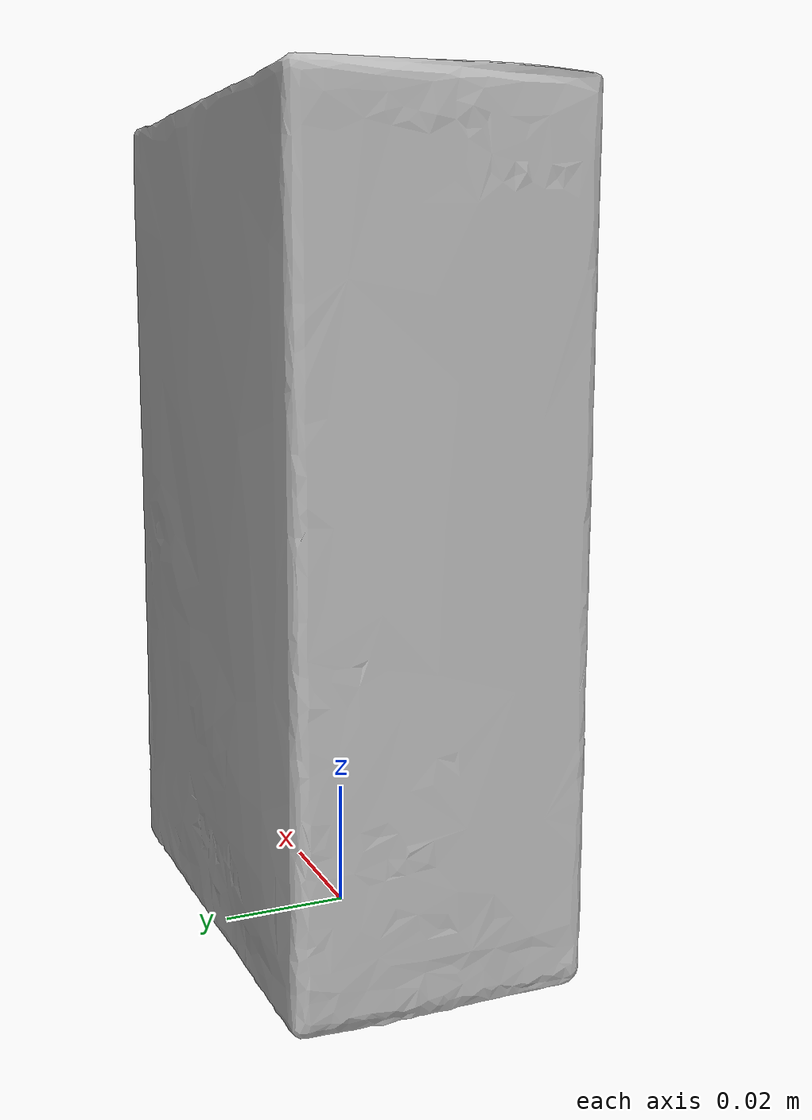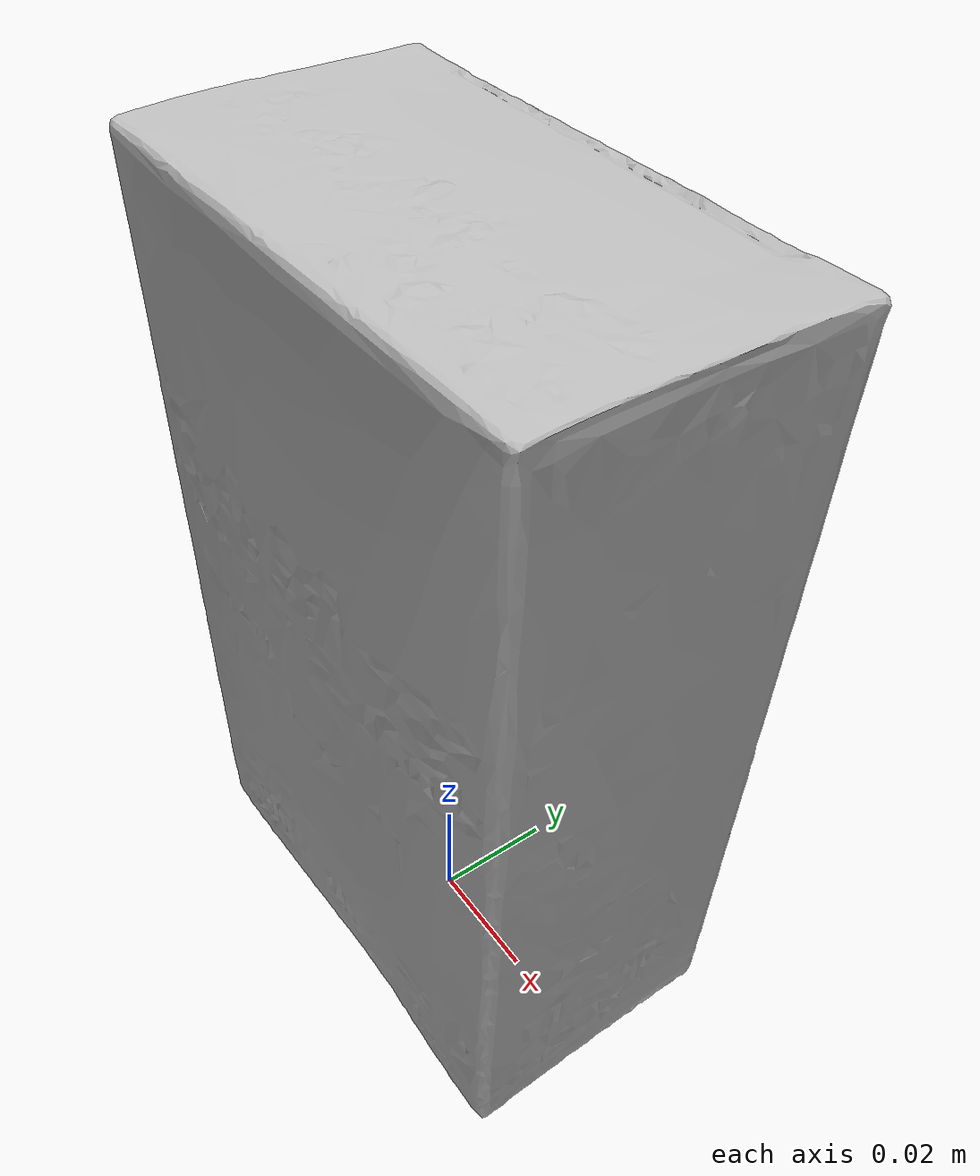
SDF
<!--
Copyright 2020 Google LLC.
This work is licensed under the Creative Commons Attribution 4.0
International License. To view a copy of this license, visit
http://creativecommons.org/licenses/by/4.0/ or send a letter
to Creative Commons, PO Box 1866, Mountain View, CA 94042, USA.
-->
<?xml version="1.0" ?>
<sdf version="1.6">
  <model name="SAMe_200_KX7ZmOw47co">
    <link name="link_0">
      <visual name="visual">
        <geometry>
          <mesh>
            <uri>meshes/model.obj</uri>
          </mesh>
        </geometry>
      </visual>
      <collision name="collision_0">
        <geometry>
          <mesh>
            <uri>meshes/model.obj</uri>
          </mesh>
        </geometry>
      </collision>
    </link>
  </model>
</sdf>
